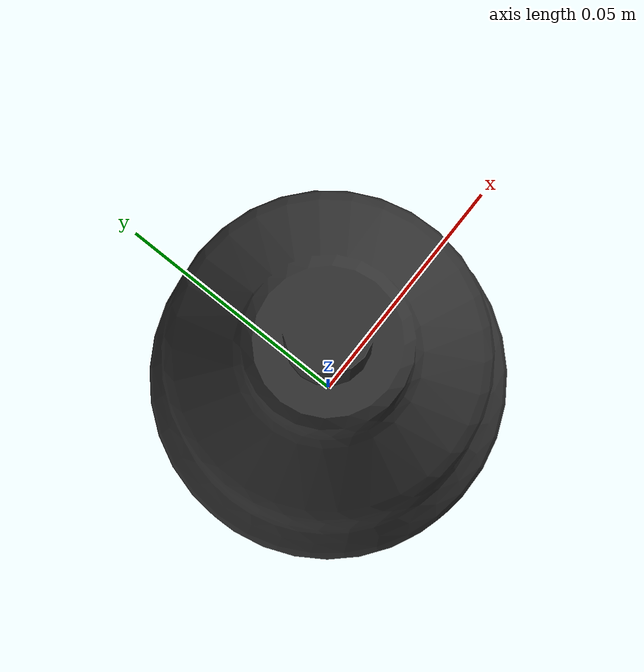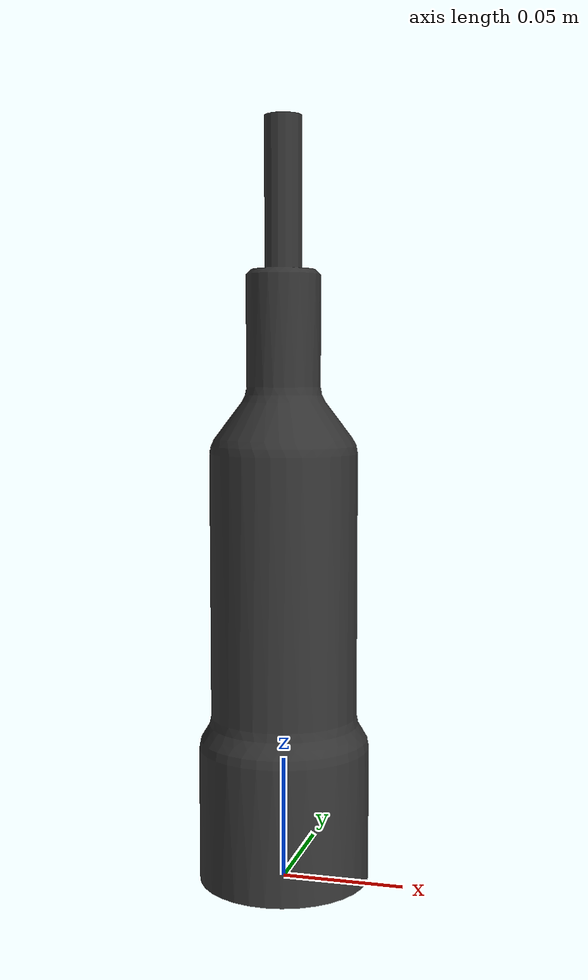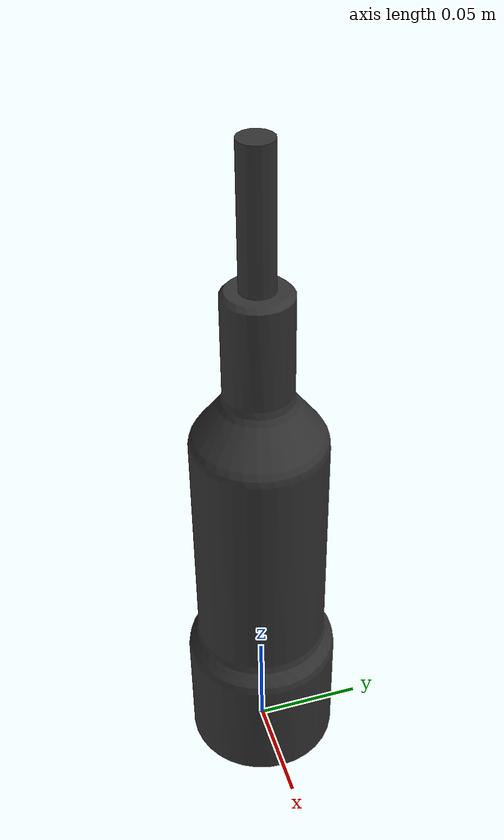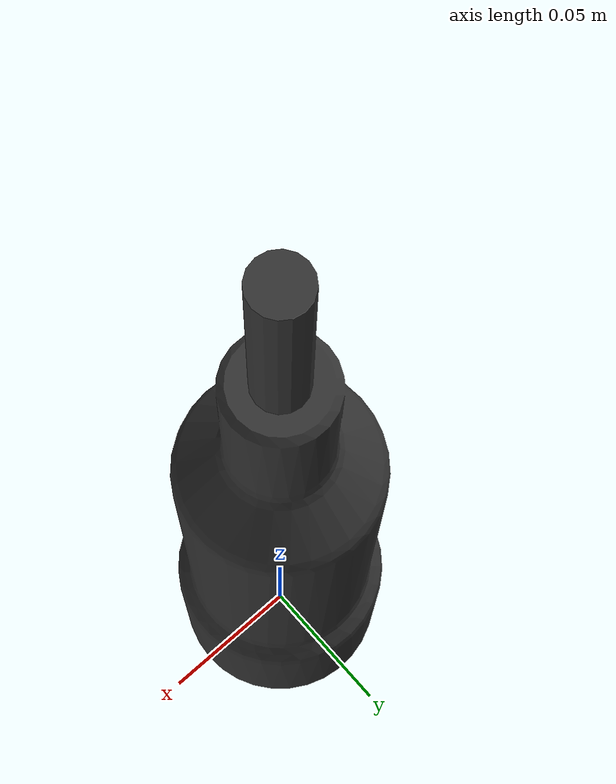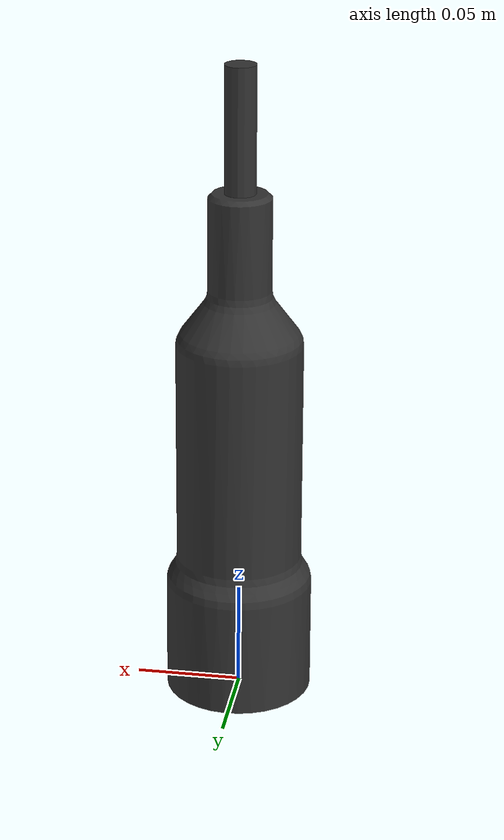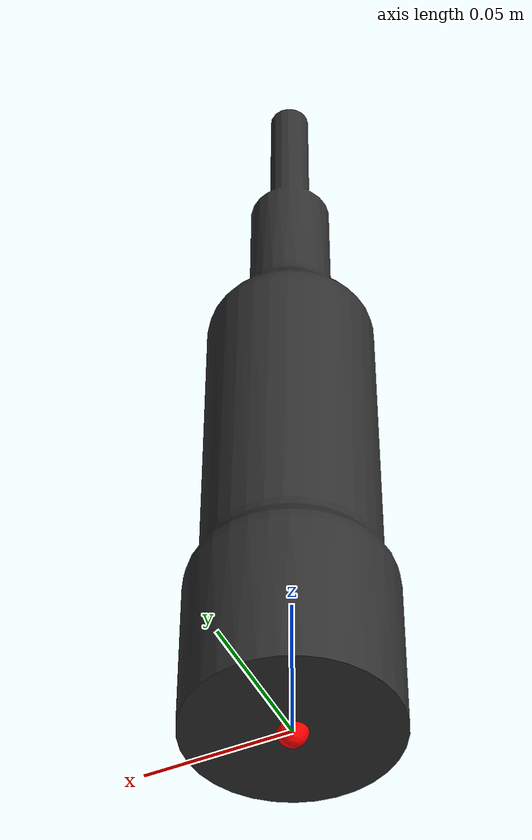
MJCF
<mujoco model="screwdriver">
  <compiler angle="radian"/>
  <option timestep="0.01"/>

  <visual>
    <headlight diffuse="0.6 0.6 0.6" ambient="0.1 0.1 0.1" specular="0 0 0"/>
    <rgba haze="0.15 0.25 0.35 1"/>
    <global azimuth="120" elevation="-20"/>
  </visual>

  <asset>
    <mesh name="tool_mesh" file="screwdriver.obj"/>
  </asset>

  <default>
    <geom condim="3" friction="1 0.5 0.01" solref="0.02 1" solimp="0.9 0.95 0.001"/>
  </default>

  <worldbody>
    <body name="tool_top" pos="0 0 0">
      <inertial mass="0.0" pos="0 0 0.155" diaginertia="0.0143 0.0143 0.0016"/>
      <geom type="mesh" mesh="tool_mesh" rgba="0.2 0.2 0.2 1" contype="0" conaffinity="0" group="0"/>
      <!-- collision cylinder -->
      <geom name="screwdriver" type="cylinder" size="0.035 0.155" pos="0 0 0.155" rgba="0.2 0.8 0.2 1" contype="1" conaffinity="1" group="3"/>
      <!-- Marker (red sphere) to specify the origin -->
      <site name="mount_site" pos="0 0 0" size="0.005" rgba="1 0 0 1"/>
      <!-- Marker (green sphere) to specify the point of application of the weight -->
      <geom type="sphere" size="0.005" pos="0 0 0.125" rgba="0 1 0 1" contype="0" conaffinity="0" group="2"/>
    </body>
  </worldbody>
</mujoco>
